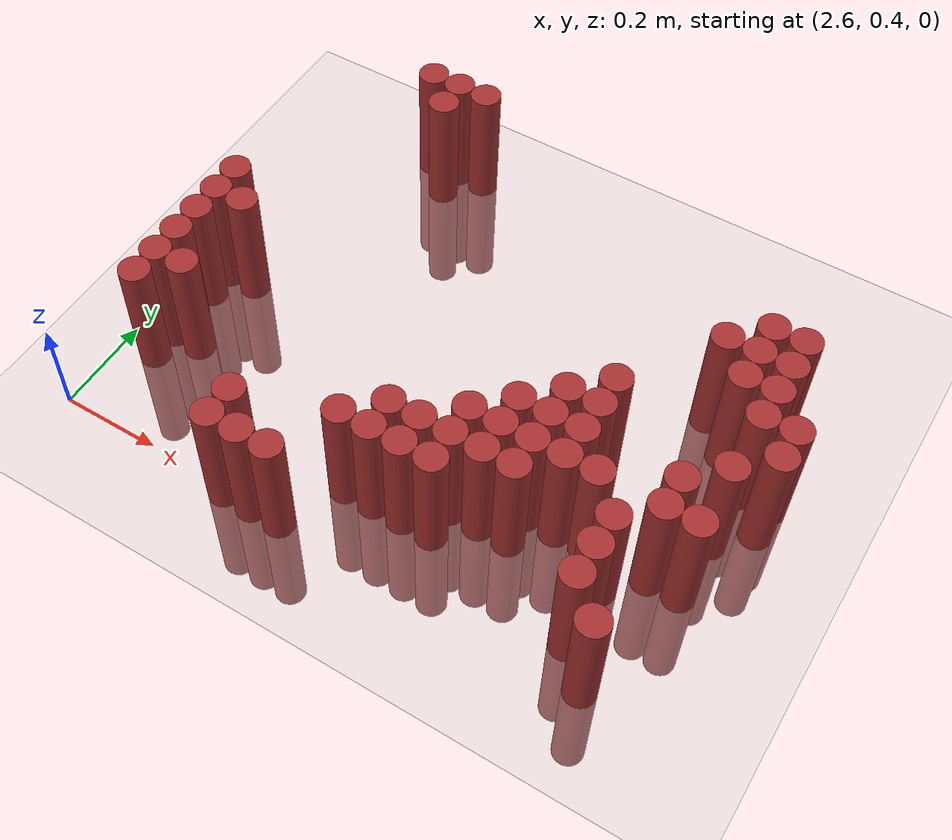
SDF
<sdf version="1.6">
 <world name="default">
  <model name="ground_plane">
   <static>1</static>
   <link name="link">
    <collision name="collision">
     <geometry><plane><normal>0 0 1</normal><size>100 100</size></plane></geometry>
     <surface><friction><ode><mu>100</mu><mu2>50</mu2></ode></friction></surface>
    </collision>
    <visual name="visual">
     <cast_shadows>0</cast_shadows>
     <geometry><plane><normal>0 0 1</normal><size>100 100</size></plane></geometry>
     <material>
      <script><uri>file://media/materials/scripts/gazebo.material</uri><name>Gazebo/Grey</name></script>
     </material>
    </visual>
   </link>
  </model>
  <model name="unit_cylinder_181">
   <static>1</static>
   <pose>2.850000 1.290000 0.000000 0.000000 0.000000 0.000000</pose>
   <link name="link">
    <inertial>
     <mass>1</mass>
     <inertia><ixx>0.145833</ixx><ixy>0</ixy><ixz>0</ixz><iyy>0.145833</iyy><iyz>0</iyz><izz>0.125</izz></inertia>
    </inertial>
    <collision name="collision">
     <geometry><cylinder><radius>0.030000</radius><length>0.5</length></cylinder></geometry>
    </collision>
    <visual name="visual">
     <geometry><cylinder><radius>0.030000</radius><length>0.5</length></cylinder></geometry>
     <material>
      <ambient>0.648000 0.192000 0.192000 1</ambient>
      <diffuse>0.648000 0.192000 0.192000 1</diffuse>
     </material>
     <material>
      <script><name>Gazebo/Grey</name><uri>file://media/materials/scripts/gazebo.material</uri></script>
     </material>
    </visual>
   </link>
  </model>
  <model name="unit_cylinder_182">
   <static>1</static>
   <pose>2.910000 1.290000 0.000000 0.000000 0.000000 0.000000</pose>
   <link name="link">
    <inertial>
     <mass>1</mass>
     <inertia><ixx>0.145833</ixx><ixy>0</ixy><ixz>0</ixz><iyy>0.145833</iyy><iyz>0</iyz><izz>0.125</izz></inertia>
    </inertial>
    <collision name="collision">
     <geometry><cylinder><radius>0.030000</radius><length>0.5</length></cylinder></geometry>
    </collision>
    <visual name="visual">
     <geometry><cylinder><radius>0.030000</radius><length>0.5</length></cylinder></geometry>
     <material>
      <ambient>0.648000 0.192000 0.192000 1</ambient>
      <diffuse>0.648000 0.192000 0.192000 1</diffuse>
     </material>
     <material>
      <script><name>Gazebo/Grey</name><uri>file://media/materials/scripts/gazebo.material</uri></script>
     </material>
    </visual>
   </link>
  </model>
  <model name="unit_cylinder_183">
   <static>1</static>
   <pose>2.970000 1.290000 0.000000 0.000000 0.000000 0.000000</pose>
   <link name="link">
    <inertial>
     <mass>1</mass>
     <inertia><ixx>0.145833</ixx><ixy>0</ixy><ixz>0</ixz><iyy>0.145833</iyy><iyz>0</iyz><izz>0.125</izz></inertia>
    </inertial>
    <collision name="collision">
     <geometry><cylinder><radius>0.030000</radius><length>0.5</length></cylinder></geometry>
    </collision>
    <visual name="visual">
     <geometry><cylinder><radius>0.030000</radius><length>0.5</length></cylinder></geometry>
     <material>
      <ambient>0.648000 0.192000 0.192000 1</ambient>
      <diffuse>0.648000 0.192000 0.192000 1</diffuse>
     </material>
     <material>
      <script><name>Gazebo/Grey</name><uri>file://media/materials/scripts/gazebo.material</uri></script>
     </material>
    </visual>
   </link>
  </model>
  <model name="unit_cylinder_184">
   <static>1</static>
   <pose>2.910000 1.230000 0.000000 0.000000 0.000000 0.000000</pose>
   <link name="link">
    <inertial>
     <mass>1</mass>
     <inertia><ixx>0.145833</ixx><ixy>0</ixy><ixz>0</ixz><iyy>0.145833</iyy><iyz>0</iyz><izz>0.125</izz></inertia>
    </inertial>
    <collision name="collision">
     <geometry><cylinder><radius>0.030000</radius><length>0.5</length></cylinder></geometry>
    </collision>
    <visual name="visual">
     <geometry><cylinder><radius>0.030000</radius><length>0.5</length></cylinder></geometry>
     <material>
      <ambient>0.648000 0.192000 0.192000 1</ambient>
      <diffuse>0.648000 0.192000 0.192000 1</diffuse>
     </material>
     <material>
      <script><name>Gazebo/Grey</name><uri>file://media/materials/scripts/gazebo.material</uri></script>
     </material>
    </visual>
   </link>
  </model>
  <model name="unit_cylinder_185">
   <static>1</static>
   <pose>3.690000 1.050000 0.000000 0.000000 0.000000 0.000000</pose>
   <link name="link">
    <inertial>
     <mass>1</mass>
     <inertia><ixx>0.145833</ixx><ixy>0</ixy><ixz>0</ixz><iyy>0.145833</iyy><iyz>0</iyz><izz>0.125</izz></inertia>
    </inertial>
    <collision name="collision">
     <geometry><cylinder><radius>0.030000</radius><length>0.5</length></cylinder></geometry>
    </collision>
    <visual name="visual">
     <geometry><cylinder><radius>0.030000</radius><length>0.5</length></cylinder></geometry>
     <material>
      <ambient>0.648000 0.192000 0.192000 1</ambient>
      <diffuse>0.648000 0.192000 0.192000 1</diffuse>
     </material>
     <material>
      <script><name>Gazebo/Grey</name><uri>file://media/materials/scripts/gazebo.material</uri></script>
     </material>
    </visual>
   </link>
  </model>
  <model name="unit_cylinder_186">
   <static>1</static>
   <pose>3.750000 1.050000 0.000000 0.000000 0.000000 0.000000</pose>
   <link name="link">
    <inertial>
     <mass>1</mass>
     <inertia><ixx>0.145833</ixx><ixy>0</ixy><ixz>0</ixz><iyy>0.145833</iyy><iyz>0</iyz><izz>0.125</izz></inertia>
    </inertial>
    <collision name="collision">
     <geometry><cylinder><radius>0.030000</radius><length>0.5</length></cylinder></geometry>
    </collision>
    <visual name="visual">
     <geometry><cylinder><radius>0.030000</radius><length>0.5</length></cylinder></geometry>
     <material>
      <ambient>0.648000 0.192000 0.192000 1</ambient>
      <diffuse>0.648000 0.192000 0.192000 1</diffuse>
     </material>
     <material>
      <script><name>Gazebo/Grey</name><uri>file://media/materials/scripts/gazebo.material</uri></script>
     </material>
    </visual>
   </link>
  </model>
  <model name="unit_cylinder_187">
   <static>1</static>
   <pose>3.630000 0.990000 0.000000 0.000000 0.000000 0.000000</pose>
   <link name="link">
    <inertial>
     <mass>1</mass>
     <inertia><ixx>0.145833</ixx><ixy>0</ixy><ixz>0</ixz><iyy>0.145833</iyy><iyz>0</iyz><izz>0.125</izz></inertia>
    </inertial>
    <collision name="collision">
     <geometry><cylinder><radius>0.030000</radius><length>0.5</length></cylinder></geometry>
    </collision>
    <visual name="visual">
     <geometry><cylinder><radius>0.030000</radius><length>0.5</length></cylinder></geometry>
     <material>
      <ambient>0.648000 0.192000 0.192000 1</ambient>
      <diffuse>0.648000 0.192000 0.192000 1</diffuse>
     </material>
     <material>
      <script><name>Gazebo/Grey</name><uri>file://media/materials/scripts/gazebo.material</uri></script>
     </material>
    </visual>
   </link>
  </model>
  <model name="unit_cylinder_188">
   <static>1</static>
   <pose>3.690000 0.990000 0.000000 0.000000 0.000000 0.000000</pose>
   <link name="link">
    <inertial>
     <mass>1</mass>
     <inertia><ixx>0.145833</ixx><ixy>0</ixy><ixz>0</ixz><iyy>0.145833</iyy><iyz>0</iyz><izz>0.125</izz></inertia>
    </inertial>
    <collision name="collision">
     <geometry><cylinder><radius>0.030000</radius><length>0.5</length></cylinder></geometry>
    </collision>
    <visual name="visual">
     <geometry><cylinder><radius>0.030000</radius><length>0.5</length></cylinder></geometry>
     <material>
      <ambient>0.648000 0.192000 0.192000 1</ambient>
      <diffuse>0.648000 0.192000 0.192000 1</diffuse>
     </material>
     <material>
      <script><name>Gazebo/Grey</name><uri>file://media/materials/scripts/gazebo.material</uri></script>
     </material>
    </visual>
   </link>
  </model>
  <model name="unit_cylinder_189">
   <static>1</static>
   <pose>3.750000 0.990000 0.000000 0.000000 0.000000 0.000000</pose>
   <link name="link">
    <inertial>
     <mass>1</mass>
     <inertia><ixx>0.145833</ixx><ixy>0</ixy><ixz>0</ixz><iyy>0.145833</iyy><iyz>0</iyz><izz>0.125</izz></inertia>
    </inertial>
    <collision name="collision">
     <geometry><cylinder><radius>0.030000</radius><length>0.5</length></cylinder></geometry>
    </collision>
    <visual name="visual">
     <geometry><cylinder><radius>0.030000</radius><length>0.5</length></cylinder></geometry>
     <material>
      <ambient>0.648000 0.192000 0.192000 1</ambient>
      <diffuse>0.648000 0.192000 0.192000 1</diffuse>
     </material>
     <material>
      <script><name>Gazebo/Grey</name><uri>file://media/materials/scripts/gazebo.material</uri></script>
     </material>
    </visual>
   </link>
  </model>
  <model name="unit_cylinder_190">
   <static>1</static>
   <pose>3.690000 0.930000 0.000000 0.000000 0.000000 0.000000</pose>
   <link name="link">
    <inertial>
     <mass>1</mass>
     <inertia><ixx>0.145833</ixx><ixy>0</ixy><ixz>0</ixz><iyy>0.145833</iyy><iyz>0</iyz><izz>0.125</izz></inertia>
    </inertial>
    <collision name="collision">
     <geometry><cylinder><radius>0.030000</radius><length>0.5</length></cylinder></geometry>
    </collision>
    <visual name="visual">
     <geometry><cylinder><radius>0.030000</radius><length>0.5</length></cylinder></geometry>
     <material>
      <ambient>0.648000 0.192000 0.192000 1</ambient>
      <diffuse>0.648000 0.192000 0.192000 1</diffuse>
     </material>
     <material>
      <script><name>Gazebo/Grey</name><uri>file://media/materials/scripts/gazebo.material</uri></script>
     </material>
    </visual>
   </link>
  </model>
  <model name="unit_cylinder_191">
   <static>1</static>
   <pose>3.750000 0.930000 0.000000 0.000000 0.000000 0.000000</pose>
   <link name="link">
    <inertial>
     <mass>1</mass>
     <inertia><ixx>0.145833</ixx><ixy>0</ixy><ixz>0</ixz><iyy>0.145833</iyy><iyz>0</iyz><izz>0.125</izz></inertia>
    </inertial>
    <collision name="collision">
     <geometry><cylinder><radius>0.030000</radius><length>0.5</length></cylinder></geometry>
    </collision>
    <visual name="visual">
     <geometry><cylinder><radius>0.030000</radius><length>0.5</length></cylinder></geometry>
     <material>
      <ambient>0.648000 0.192000 0.192000 1</ambient>
      <diffuse>0.648000 0.192000 0.192000 1</diffuse>
     </material>
     <material>
      <script><name>Gazebo/Grey</name><uri>file://media/materials/scripts/gazebo.material</uri></script>
     </material>
    </visual>
   </link>
  </model>
  <model name="unit_cylinder_195">
   <static>1</static>
   <pose>2.670000 0.870000 0.000000 0.000000 0.000000 0.000000</pose>
   <link name="link">
    <inertial>
     <mass>1</mass>
     <inertia><ixx>0.145833</ixx><ixy>0</ixy><ixz>0</ixz><iyy>0.145833</iyy><iyz>0</iyz><izz>0.125</izz></inertia>
    </inertial>
    <collision name="collision">
     <geometry><cylinder><radius>0.030000</radius><length>0.5</length></cylinder></geometry>
    </collision>
    <visual name="visual">
     <geometry><cylinder><radius>0.030000</radius><length>0.5</length></cylinder></geometry>
     <material>
      <ambient>0.648000 0.192000 0.192000 1</ambient>
      <diffuse>0.648000 0.192000 0.192000 1</diffuse>
     </material>
     <material>
      <script><name>Gazebo/Grey</name><uri>file://media/materials/scripts/gazebo.material</uri></script>
     </material>
    </visual>
   </link>
  </model>
  <model name="unit_cylinder_196">
   <static>1</static>
   <pose>3.750000 0.870000 0.000000 0.000000 0.000000 0.000000</pose>
   <link name="link">
    <inertial>
     <mass>1</mass>
     <inertia><ixx>0.145833</ixx><ixy>0</ixy><ixz>0</ixz><iyy>0.145833</iyy><iyz>0</iyz><izz>0.125</izz></inertia>
    </inertial>
    <collision name="collision">
     <geometry><cylinder><radius>0.030000</radius><length>0.5</length></cylinder></geometry>
    </collision>
    <visual name="visual">
     <geometry><cylinder><radius>0.030000</radius><length>0.5</length></cylinder></geometry>
     <material>
      <ambient>0.648000 0.192000 0.192000 1</ambient>
      <diffuse>0.648000 0.192000 0.192000 1</diffuse>
     </material>
     <material>
      <script><name>Gazebo/Grey</name><uri>file://media/materials/scripts/gazebo.material</uri></script>
     </material>
    </visual>
   </link>
  </model>
  <model name="unit_cylinder_197">
   <static>1</static>
   <pose>3.810000 0.870000 0.000000 0.000000 0.000000 0.000000</pose>
   <link name="link">
    <inertial>
     <mass>1</mass>
     <inertia><ixx>0.145833</ixx><ixy>0</ixy><ixz>0</ixz><iyy>0.145833</iyy><iyz>0</iyz><izz>0.125</izz></inertia>
    </inertial>
    <collision name="collision">
     <geometry><cylinder><radius>0.030000</radius><length>0.5</length></cylinder></geometry>
    </collision>
    <visual name="visual">
     <geometry><cylinder><radius>0.030000</radius><length>0.5</length></cylinder></geometry>
     <material>
      <ambient>0.648000 0.192000 0.192000 1</ambient>
      <diffuse>0.648000 0.192000 0.192000 1</diffuse>
     </material>
     <material>
      <script><name>Gazebo/Grey</name><uri>file://media/materials/scripts/gazebo.material</uri></script>
     </material>
    </visual>
   </link>
  </model>
  <model name="unit_cylinder_204">
   <static>1</static>
   <pose>2.670000 0.810000 0.000000 0.000000 0.000000 0.000000</pose>
   <link name="link">
    <inertial>
     <mass>1</mass>
     <inertia><ixx>0.145833</ixx><ixy>0</ixy><ixz>0</ixz><iyy>0.145833</iyy><iyz>0</iyz><izz>0.125</izz></inertia>
    </inertial>
    <collision name="collision">
     <geometry><cylinder><radius>0.030000</radius><length>0.5</length></cylinder></geometry>
    </collision>
    <visual name="visual">
     <geometry><cylinder><radius>0.030000</radius><length>0.5</length></cylinder></geometry>
     <material>
      <ambient>0.648000 0.192000 0.192000 1</ambient>
      <diffuse>0.648000 0.192000 0.192000 1</diffuse>
     </material>
     <material>
      <script><name>Gazebo/Grey</name><uri>file://media/materials/scripts/gazebo.material</uri></script>
     </material>
    </visual>
   </link>
  </model>
  <model name="unit_cylinder_205">
   <static>1</static>
   <pose>2.730000 0.810000 0.000000 0.000000 0.000000 0.000000</pose>
   <link name="link">
    <inertial>
     <mass>1</mass>
     <inertia><ixx>0.145833</ixx><ixy>0</ixy><ixz>0</ixz><iyy>0.145833</iyy><iyz>0</iyz><izz>0.125</izz></inertia>
    </inertial>
    <collision name="collision">
     <geometry><cylinder><radius>0.030000</radius><length>0.5</length></cylinder></geometry>
    </collision>
    <visual name="visual">
     <geometry><cylinder><radius>0.030000</radius><length>0.5</length></cylinder></geometry>
     <material>
      <ambient>0.648000 0.192000 0.192000 1</ambient>
      <diffuse>0.648000 0.192000 0.192000 1</diffuse>
     </material>
     <material>
      <script><name>Gazebo/Grey</name><uri>file://media/materials/scripts/gazebo.material</uri></script>
     </material>
    </visual>
   </link>
  </model>
  <model name="unit_cylinder_206">
   <static>1</static>
   <pose>3.510000 0.810000 0.000000 0.000000 0.000000 0.000000</pose>
   <link name="link">
    <inertial>
     <mass>1</mass>
     <inertia><ixx>0.145833</ixx><ixy>0</ixy><ixz>0</ixz><iyy>0.145833</iyy><iyz>0</iyz><izz>0.125</izz></inertia>
    </inertial>
    <collision name="collision">
     <geometry><cylinder><radius>0.030000</radius><length>0.5</length></cylinder></geometry>
    </collision>
    <visual name="visual">
     <geometry><cylinder><radius>0.030000</radius><length>0.5</length></cylinder></geometry>
     <material>
      <ambient>0.648000 0.192000 0.192000 1</ambient>
      <diffuse>0.648000 0.192000 0.192000 1</diffuse>
     </material>
     <material>
      <script><name>Gazebo/Grey</name><uri>file://media/materials/scripts/gazebo.material</uri></script>
     </material>
    </visual>
   </link>
  </model>
  <model name="unit_cylinder_207">
   <static>1</static>
   <pose>3.810000 0.810000 0.000000 0.000000 0.000000 0.000000</pose>
   <link name="link">
    <inertial>
     <mass>1</mass>
     <inertia><ixx>0.145833</ixx><ixy>0</ixy><ixz>0</ixz><iyy>0.145833</iyy><iyz>0</iyz><izz>0.125</izz></inertia>
    </inertial>
    <collision name="collision">
     <geometry><cylinder><radius>0.030000</radius><length>0.5</length></cylinder></geometry>
    </collision>
    <visual name="visual">
     <geometry><cylinder><radius>0.030000</radius><length>0.5</length></cylinder></geometry>
     <material>
      <ambient>0.648000 0.192000 0.192000 1</ambient>
      <diffuse>0.648000 0.192000 0.192000 1</diffuse>
     </material>
     <material>
      <script><name>Gazebo/Grey</name><uri>file://media/materials/scripts/gazebo.material</uri></script>
     </material>
    </visual>
   </link>
  </model>
  <model name="unit_cylinder_210">
   <static>1</static>
   <pose>2.670000 0.750000 0.000000 0.000000 0.000000 0.000000</pose>
   <link name="link">
    <inertial>
     <mass>1</mass>
     <inertia><ixx>0.145833</ixx><ixy>0</ixy><ixz>0</ixz><iyy>0.145833</iyy><iyz>0</iyz><izz>0.125</izz></inertia>
    </inertial>
    <collision name="collision">
     <geometry><cylinder><radius>0.030000</radius><length>0.5</length></cylinder></geometry>
    </collision>
    <visual name="visual">
     <geometry><cylinder><radius>0.030000</radius><length>0.5</length></cylinder></geometry>
     <material>
      <ambient>0.648000 0.192000 0.192000 1</ambient>
      <diffuse>0.648000 0.192000 0.192000 1</diffuse>
     </material>
     <material>
      <script><name>Gazebo/Grey</name><uri>file://media/materials/scripts/gazebo.material</uri></script>
     </material>
    </visual>
   </link>
  </model>
  <model name="unit_cylinder_211">
   <static>1</static>
   <pose>3.450000 0.750000 0.000000 0.000000 0.000000 0.000000</pose>
   <link name="link">
    <inertial>
     <mass>1</mass>
     <inertia><ixx>0.145833</ixx><ixy>0</ixy><ixz>0</ixz><iyy>0.145833</iyy><iyz>0</iyz><izz>0.125</izz></inertia>
    </inertial>
    <collision name="collision">
     <geometry><cylinder><radius>0.030000</radius><length>0.5</length></cylinder></geometry>
    </collision>
    <visual name="visual">
     <geometry><cylinder><radius>0.030000</radius><length>0.5</length></cylinder></geometry>
     <material>
      <ambient>0.648000 0.192000 0.192000 1</ambient>
      <diffuse>0.648000 0.192000 0.192000 1</diffuse>
     </material>
     <material>
      <script><name>Gazebo/Grey</name><uri>file://media/materials/scripts/gazebo.material</uri></script>
     </material>
    </visual>
   </link>
  </model>
  <model name="unit_cylinder_212">
   <static>1</static>
   <pose>3.510000 0.750000 0.000000 0.000000 0.000000 0.000000</pose>
   <link name="link">
    <inertial>
     <mass>1</mass>
     <inertia><ixx>0.145833</ixx><ixy>0</ixy><ixz>0</ixz><iyy>0.145833</iyy><iyz>0</iyz><izz>0.125</izz></inertia>
    </inertial>
    <collision name="collision">
     <geometry><cylinder><radius>0.030000</radius><length>0.5</length></cylinder></geometry>
    </collision>
    <visual name="visual">
     <geometry><cylinder><radius>0.030000</radius><length>0.5</length></cylinder></geometry>
     <material>
      <ambient>0.648000 0.192000 0.192000 1</ambient>
      <diffuse>0.648000 0.192000 0.192000 1</diffuse>
     </material>
     <material>
      <script><name>Gazebo/Grey</name><uri>file://media/materials/scripts/gazebo.material</uri></script>
     </material>
    </visual>
   </link>
  </model>
  <model name="unit_cylinder_213">
   <static>1</static>
   <pose>3.750000 0.750000 0.000000 0.000000 0.000000 0.000000</pose>
   <link name="link">
    <inertial>
     <mass>1</mass>
     <inertia><ixx>0.145833</ixx><ixy>0</ixy><ixz>0</ixz><iyy>0.145833</iyy><iyz>0</iyz><izz>0.125</izz></inertia>
    </inertial>
    <collision name="collision">
     <geometry><cylinder><radius>0.030000</radius><length>0.5</length></cylinder></geometry>
    </collision>
    <visual name="visual">
     <geometry><cylinder><radius>0.030000</radius><length>0.5</length></cylinder></geometry>
     <material>
      <ambient>0.648000 0.192000 0.192000 1</ambient>
      <diffuse>0.648000 0.192000 0.192000 1</diffuse>
     </material>
     <material>
      <script><name>Gazebo/Grey</name><uri>file://media/materials/scripts/gazebo.material</uri></script>
     </material>
    </visual>
   </link>
  </model>
  <model name="unit_cylinder_218">
   <static>1</static>
   <pose>2.670000 0.690000 0.000000 0.000000 0.000000 0.000000</pose>
   <link name="link">
    <inertial>
     <mass>1</mass>
     <inertia><ixx>0.145833</ixx><ixy>0</ixy><ixz>0</ixz><iyy>0.145833</iyy><iyz>0</iyz><izz>0.125</izz></inertia>
    </inertial>
    <collision name="collision">
     <geometry><cylinder><radius>0.030000</radius><length>0.5</length></cylinder></geometry>
    </collision>
    <visual name="visual">
     <geometry><cylinder><radius>0.030000</radius><length>0.5</length></cylinder></geometry>
     <material>
      <ambient>0.648000 0.192000 0.192000 1</ambient>
      <diffuse>0.648000 0.192000 0.192000 1</diffuse>
     </material>
     <material>
      <script><name>Gazebo/Grey</name><uri>file://media/materials/scripts/gazebo.material</uri></script>
     </material>
    </visual>
   </link>
  </model>
  <model name="unit_cylinder_219">
   <static>1</static>
   <pose>3.390000 0.690000 0.000000 0.000000 0.000000 0.000000</pose>
   <link name="link">
    <inertial>
     <mass>1</mass>
     <inertia><ixx>0.145833</ixx><ixy>0</ixy><ixz>0</ixz><iyy>0.145833</iyy><iyz>0</iyz><izz>0.125</izz></inertia>
    </inertial>
    <collision name="collision">
     <geometry><cylinder><radius>0.030000</radius><length>0.5</length></cylinder></geometry>
    </collision>
    <visual name="visual">
     <geometry><cylinder><radius>0.030000</radius><length>0.5</length></cylinder></geometry>
     <material>
      <ambient>0.648000 0.192000 0.192000 1</ambient>
      <diffuse>0.648000 0.192000 0.192000 1</diffuse>
     </material>
     <material>
      <script><name>Gazebo/Grey</name><uri>file://media/materials/scripts/gazebo.material</uri></script>
     </material>
    </visual>
   </link>
  </model>
  <model name="unit_cylinder_220">
   <static>1</static>
   <pose>3.450000 0.690000 0.000000 0.000000 0.000000 0.000000</pose>
   <link name="link">
    <inertial>
     <mass>1</mass>
     <inertia><ixx>0.145833</ixx><ixy>0</ixy><ixz>0</ixz><iyy>0.145833</iyy><iyz>0</iyz><izz>0.125</izz></inertia>
    </inertial>
    <collision name="collision">
     <geometry><cylinder><radius>0.030000</radius><length>0.5</length></cylinder></geometry>
    </collision>
    <visual name="visual">
     <geometry><cylinder><radius>0.030000</radius><length>0.5</length></cylinder></geometry>
     <material>
      <ambient>0.648000 0.192000 0.192000 1</ambient>
      <diffuse>0.648000 0.192000 0.192000 1</diffuse>
     </material>
     <material>
      <script><name>Gazebo/Grey</name><uri>file://media/materials/scripts/gazebo.material</uri></script>
     </material>
    </visual>
   </link>
  </model>
  <model name="unit_cylinder_221">
   <static>1</static>
   <pose>3.510000 0.690000 0.000000 0.000000 0.000000 0.000000</pose>
   <link name="link">
    <inertial>
     <mass>1</mass>
     <inertia><ixx>0.145833</ixx><ixy>0</ixy><ixz>0</ixz><iyy>0.145833</iyy><iyz>0</iyz><izz>0.125</izz></inertia>
    </inertial>
    <collision name="collision">
     <geometry><cylinder><radius>0.030000</radius><length>0.5</length></cylinder></geometry>
    </collision>
    <visual name="visual">
     <geometry><cylinder><radius>0.030000</radius><length>0.5</length></cylinder></geometry>
     <material>
      <ambient>0.648000 0.192000 0.192000 1</ambient>
      <diffuse>0.648000 0.192000 0.192000 1</diffuse>
     </material>
     <material>
      <script><name>Gazebo/Grey</name><uri>file://media/materials/scripts/gazebo.material</uri></script>
     </material>
    </visual>
   </link>
  </model>
  <model name="unit_cylinder_222">
   <static>1</static>
   <pose>3.690000 0.690000 0.000000 0.000000 0.000000 0.000000</pose>
   <link name="link">
    <inertial>
     <mass>1</mass>
     <inertia><ixx>0.145833</ixx><ixy>0</ixy><ixz>0</ixz><iyy>0.145833</iyy><iyz>0</iyz><izz>0.125</izz></inertia>
    </inertial>
    <collision name="collision">
     <geometry><cylinder><radius>0.030000</radius><length>0.5</length></cylinder></geometry>
    </collision>
    <visual name="visual">
     <geometry><cylinder><radius>0.030000</radius><length>0.5</length></cylinder></geometry>
     <material>
      <ambient>0.648000 0.192000 0.192000 1</ambient>
      <diffuse>0.648000 0.192000 0.192000 1</diffuse>
     </material>
     <material>
      <script><name>Gazebo/Grey</name><uri>file://media/materials/scripts/gazebo.material</uri></script>
     </material>
    </visual>
   </link>
  </model>
  <model name="unit_cylinder_225">
   <static>1</static>
   <pose>2.670000 0.630000 0.000000 0.000000 0.000000 0.000000</pose>
   <link name="link">
    <inertial>
     <mass>1</mass>
     <inertia><ixx>0.145833</ixx><ixy>0</ixy><ixz>0</ixz><iyy>0.145833</iyy><iyz>0</iyz><izz>0.125</izz></inertia>
    </inertial>
    <collision name="collision">
     <geometry><cylinder><radius>0.030000</radius><length>0.5</length></cylinder></geometry>
    </collision>
    <visual name="visual">
     <geometry><cylinder><radius>0.030000</radius><length>0.5</length></cylinder></geometry>
     <material>
      <ambient>0.648000 0.192000 0.192000 1</ambient>
      <diffuse>0.648000 0.192000 0.192000 1</diffuse>
     </material>
     <material>
      <script><name>Gazebo/Grey</name><uri>file://media/materials/scripts/gazebo.material</uri></script>
     </material>
    </visual>
   </link>
  </model>
  <model name="unit_cylinder_226">
   <static>1</static>
   <pose>2.730000 0.630000 0.000000 0.000000 0.000000 0.000000</pose>
   <link name="link">
    <inertial>
     <mass>1</mass>
     <inertia><ixx>0.145833</ixx><ixy>0</ixy><ixz>0</ixz><iyy>0.145833</iyy><iyz>0</iyz><izz>0.125</izz></inertia>
    </inertial>
    <collision name="collision">
     <geometry><cylinder><radius>0.030000</radius><length>0.5</length></cylinder></geometry>
    </collision>
    <visual name="visual">
     <geometry><cylinder><radius>0.030000</radius><length>0.5</length></cylinder></geometry>
     <material>
      <ambient>0.648000 0.192000 0.192000 1</ambient>
      <diffuse>0.648000 0.192000 0.192000 1</diffuse>
     </material>
     <material>
      <script><name>Gazebo/Grey</name><uri>file://media/materials/scripts/gazebo.material</uri></script>
     </material>
    </visual>
   </link>
  </model>
  <model name="unit_cylinder_227">
   <static>1</static>
   <pose>3.330000 0.630000 0.000000 0.000000 0.000000 0.000000</pose>
   <link name="link">
    <inertial>
     <mass>1</mass>
     <inertia><ixx>0.145833</ixx><ixy>0</ixy><ixz>0</ixz><iyy>0.145833</iyy><iyz>0</iyz><izz>0.125</izz></inertia>
    </inertial>
    <collision name="collision">
     <geometry><cylinder><radius>0.030000</radius><length>0.5</length></cylinder></geometry>
    </collision>
    <visual name="visual">
     <geometry><cylinder><radius>0.030000</radius><length>0.5</length></cylinder></geometry>
     <material>
      <ambient>0.648000 0.192000 0.192000 1</ambient>
      <diffuse>0.648000 0.192000 0.192000 1</diffuse>
     </material>
     <material>
      <script><name>Gazebo/Grey</name><uri>file://media/materials/scripts/gazebo.material</uri></script>
     </material>
    </visual>
   </link>
  </model>
  <model name="unit_cylinder_228">
   <static>1</static>
   <pose>3.390000 0.630000 0.000000 0.000000 0.000000 0.000000</pose>
   <link name="link">
    <inertial>
     <mass>1</mass>
     <inertia><ixx>0.145833</ixx><ixy>0</ixy><ixz>0</ixz><iyy>0.145833</iyy><iyz>0</iyz><izz>0.125</izz></inertia>
    </inertial>
    <collision name="collision">
     <geometry><cylinder><radius>0.030000</radius><length>0.5</length></cylinder></geometry>
    </collision>
    <visual name="visual">
     <geometry><cylinder><radius>0.030000</radius><length>0.5</length></cylinder></geometry>
     <material>
      <ambient>0.648000 0.192000 0.192000 1</ambient>
      <diffuse>0.648000 0.192000 0.192000 1</diffuse>
     </material>
     <material>
      <script><name>Gazebo/Grey</name><uri>file://media/materials/scripts/gazebo.material</uri></script>
     </material>
    </visual>
   </link>
  </model>
  <model name="unit_cylinder_229">
   <static>1</static>
   <pose>3.450000 0.630000 0.000000 0.000000 0.000000 0.000000</pose>
   <link name="link">
    <inertial>
     <mass>1</mass>
     <inertia><ixx>0.145833</ixx><ixy>0</ixy><ixz>0</ixz><iyy>0.145833</iyy><iyz>0</iyz><izz>0.125</izz></inertia>
    </inertial>
    <collision name="collision">
     <geometry><cylinder><radius>0.030000</radius><length>0.5</length></cylinder></geometry>
    </collision>
    <visual name="visual">
     <geometry><cylinder><radius>0.030000</radius><length>0.5</length></cylinder></geometry>
     <material>
      <ambient>0.648000 0.192000 0.192000 1</ambient>
      <diffuse>0.648000 0.192000 0.192000 1</diffuse>
     </material>
     <material>
      <script><name>Gazebo/Grey</name><uri>file://media/materials/scripts/gazebo.material</uri></script>
     </material>
    </visual>
   </link>
  </model>
  <model name="unit_cylinder_230">
   <static>1</static>
   <pose>3.510000 0.630000 0.000000 0.000000 0.000000 0.000000</pose>
   <link name="link">
    <inertial>
     <mass>1</mass>
     <inertia><ixx>0.145833</ixx><ixy>0</ixy><ixz>0</ixz><iyy>0.145833</iyy><iyz>0</iyz><izz>0.125</izz></inertia>
    </inertial>
    <collision name="collision">
     <geometry><cylinder><radius>0.030000</radius><length>0.5</length></cylinder></geometry>
    </collision>
    <visual name="visual">
     <geometry><cylinder><radius>0.030000</radius><length>0.5</length></cylinder></geometry>
     <material>
      <ambient>0.648000 0.192000 0.192000 1</ambient>
      <diffuse>0.648000 0.192000 0.192000 1</diffuse>
     </material>
     <material>
      <script><name>Gazebo/Grey</name><uri>file://media/materials/scripts/gazebo.material</uri></script>
     </material>
    </visual>
   </link>
  </model>
  <model name="unit_cylinder_231">
   <static>1</static>
   <pose>3.570000 0.630000 0.000000 0.000000 0.000000 0.000000</pose>
   <link name="link">
    <inertial>
     <mass>1</mass>
     <inertia><ixx>0.145833</ixx><ixy>0</ixy><ixz>0</ixz><iyy>0.145833</iyy><iyz>0</iyz><izz>0.125</izz></inertia>
    </inertial>
    <collision name="collision">
     <geometry><cylinder><radius>0.030000</radius><length>0.5</length></cylinder></geometry>
    </collision>
    <visual name="visual">
     <geometry><cylinder><radius>0.030000</radius><length>0.5</length></cylinder></geometry>
     <material>
      <ambient>0.648000 0.192000 0.192000 1</ambient>
      <diffuse>0.648000 0.192000 0.192000 1</diffuse>
     </material>
     <material>
      <script><name>Gazebo/Grey</name><uri>file://media/materials/scripts/gazebo.material</uri></script>
     </material>
    </visual>
   </link>
  </model>
  <model name="unit_cylinder_232">
   <static>1</static>
   <pose>3.690000 0.630000 0.000000 0.000000 0.000000 0.000000</pose>
   <link name="link">
    <inertial>
     <mass>1</mass>
     <inertia><ixx>0.145833</ixx><ixy>0</ixy><ixz>0</ixz><iyy>0.145833</iyy><iyz>0</iyz><izz>0.125</izz></inertia>
    </inertial>
    <collision name="collision">
     <geometry><cylinder><radius>0.030000</radius><length>0.5</length></cylinder></geometry>
    </collision>
    <visual name="visual">
     <geometry><cylinder><radius>0.030000</radius><length>0.5</length></cylinder></geometry>
     <material>
      <ambient>0.648000 0.192000 0.192000 1</ambient>
      <diffuse>0.648000 0.192000 0.192000 1</diffuse>
     </material>
     <material>
      <script><name>Gazebo/Grey</name><uri>file://media/materials/scripts/gazebo.material</uri></script>
     </material>
    </visual>
   </link>
  </model>
  <model name="unit_cylinder_233">
   <static>1</static>
   <pose>3.750000 0.630000 0.000000 0.000000 0.000000 0.000000</pose>
   <link name="link">
    <inertial>
     <mass>1</mass>
     <inertia><ixx>0.145833</ixx><ixy>0</ixy><ixz>0</ixz><iyy>0.145833</iyy><iyz>0</iyz><izz>0.125</izz></inertia>
    </inertial>
    <collision name="collision">
     <geometry><cylinder><radius>0.030000</radius><length>0.5</length></cylinder></geometry>
    </collision>
    <visual name="visual">
     <geometry><cylinder><radius>0.030000</radius><length>0.5</length></cylinder></geometry>
     <material>
      <ambient>0.648000 0.192000 0.192000 1</ambient>
      <diffuse>0.648000 0.192000 0.192000 1</diffuse>
     </material>
     <material>
      <script><name>Gazebo/Grey</name><uri>file://media/materials/scripts/gazebo.material</uri></script>
     </material>
    </visual>
   </link>
  </model>
  <model name="unit_cylinder_234">
   <static>1</static>
   <pose>2.670000 0.570000 0.000000 0.000000 0.000000 0.000000</pose>
   <link name="link">
    <inertial>
     <mass>1</mass>
     <inertia><ixx>0.145833</ixx><ixy>0</ixy><ixz>0</ixz><iyy>0.145833</iyy><iyz>0</iyz><izz>0.125</izz></inertia>
    </inertial>
    <collision name="collision">
     <geometry><cylinder><radius>0.030000</radius><length>0.5</length></cylinder></geometry>
    </collision>
    <visual name="visual">
     <geometry><cylinder><radius>0.030000</radius><length>0.5</length></cylinder></geometry>
     <material>
      <ambient>0.648000 0.192000 0.192000 1</ambient>
      <diffuse>0.648000 0.192000 0.192000 1</diffuse>
     </material>
     <material>
      <script><name>Gazebo/Grey</name><uri>file://media/materials/scripts/gazebo.material</uri></script>
     </material>
    </visual>
   </link>
  </model>
  <model name="unit_cylinder_235">
   <static>1</static>
   <pose>3.210000 0.570000 0.000000 0.000000 0.000000 0.000000</pose>
   <link name="link">
    <inertial>
     <mass>1</mass>
     <inertia><ixx>0.145833</ixx><ixy>0</ixy><ixz>0</ixz><iyy>0.145833</iyy><iyz>0</iyz><izz>0.125</izz></inertia>
    </inertial>
    <collision name="collision">
     <geometry><cylinder><radius>0.030000</radius><length>0.5</length></cylinder></geometry>
    </collision>
    <visual name="visual">
     <geometry><cylinder><radius>0.030000</radius><length>0.5</length></cylinder></geometry>
     <material>
      <ambient>0.648000 0.192000 0.192000 1</ambient>
      <diffuse>0.648000 0.192000 0.192000 1</diffuse>
     </material>
     <material>
      <script><name>Gazebo/Grey</name><uri>file://media/materials/scripts/gazebo.material</uri></script>
     </material>
    </visual>
   </link>
  </model>
  <model name="unit_cylinder_236">
   <static>1</static>
   <pose>3.270000 0.570000 0.000000 0.000000 0.000000 0.000000</pose>
   <link name="link">
    <inertial>
     <mass>1</mass>
     <inertia><ixx>0.145833</ixx><ixy>0</ixy><ixz>0</ixz><iyy>0.145833</iyy><iyz>0</iyz><izz>0.125</izz></inertia>
    </inertial>
    <collision name="collision">
     <geometry><cylinder><radius>0.030000</radius><length>0.5</length></cylinder></geometry>
    </collision>
    <visual name="visual">
     <geometry><cylinder><radius>0.030000</radius><length>0.5</length></cylinder></geometry>
     <material>
      <ambient>0.648000 0.192000 0.192000 1</ambient>
      <diffuse>0.648000 0.192000 0.192000 1</diffuse>
     </material>
     <material>
      <script><name>Gazebo/Grey</name><uri>file://media/materials/scripts/gazebo.material</uri></script>
     </material>
    </visual>
   </link>
  </model>
  <model name="unit_cylinder_237">
   <static>1</static>
   <pose>3.330000 0.570000 0.000000 0.000000 0.000000 0.000000</pose>
   <link name="link">
    <inertial>
     <mass>1</mass>
     <inertia><ixx>0.145833</ixx><ixy>0</ixy><ixz>0</ixz><iyy>0.145833</iyy><iyz>0</iyz><izz>0.125</izz></inertia>
    </inertial>
    <collision name="collision">
     <geometry><cylinder><radius>0.030000</radius><length>0.5</length></cylinder></geometry>
    </collision>
    <visual name="visual">
     <geometry><cylinder><radius>0.030000</radius><length>0.5</length></cylinder></geometry>
     <material>
      <ambient>0.648000 0.192000 0.192000 1</ambient>
      <diffuse>0.648000 0.192000 0.192000 1</diffuse>
     </material>
     <material>
      <script><name>Gazebo/Grey</name><uri>file://media/materials/scripts/gazebo.material</uri></script>
     </material>
    </visual>
   </link>
  </model>
  <model name="unit_cylinder_238">
   <static>1</static>
   <pose>3.390000 0.570000 0.000000 0.000000 0.000000 0.000000</pose>
   <link name="link">
    <inertial>
     <mass>1</mass>
     <inertia><ixx>0.145833</ixx><ixy>0</ixy><ixz>0</ixz><iyy>0.145833</iyy><iyz>0</iyz><izz>0.125</izz></inertia>
    </inertial>
    <collision name="collision">
     <geometry><cylinder><radius>0.030000</radius><length>0.5</length></cylinder></geometry>
    </collision>
    <visual name="visual">
     <geometry><cylinder><radius>0.030000</radius><length>0.5</length></cylinder></geometry>
     <material>
      <ambient>0.648000 0.192000 0.192000 1</ambient>
      <diffuse>0.648000 0.192000 0.192000 1</diffuse>
     </material>
     <material>
      <script><name>Gazebo/Grey</name><uri>file://media/materials/scripts/gazebo.material</uri></script>
     </material>
    </visual>
   </link>
  </model>
  <model name="unit_cylinder_239">
   <static>1</static>
   <pose>3.450000 0.570000 0.000000 0.000000 0.000000 0.000000</pose>
   <link name="link">
    <inertial>
     <mass>1</mass>
     <inertia><ixx>0.145833</ixx><ixy>0</ixy><ixz>0</ixz><iyy>0.145833</iyy><iyz>0</iyz><izz>0.125</izz></inertia>
    </inertial>
    <collision name="collision">
     <geometry><cylinder><radius>0.030000</radius><length>0.5</length></cylinder></geometry>
    </collision>
    <visual name="visual">
     <geometry><cylinder><radius>0.030000</radius><length>0.5</length></cylinder></geometry>
     <material>
      <ambient>0.648000 0.192000 0.192000 1</ambient>
      <diffuse>0.648000 0.192000 0.192000 1</diffuse>
     </material>
     <material>
      <script><name>Gazebo/Grey</name><uri>file://media/materials/scripts/gazebo.material</uri></script>
     </material>
    </visual>
   </link>
  </model>
  <model name="unit_cylinder_240">
   <static>1</static>
   <pose>3.630000 0.570000 0.000000 0.000000 0.000000 0.000000</pose>
   <link name="link">
    <inertial>
     <mass>1</mass>
     <inertia><ixx>0.145833</ixx><ixy>0</ixy><ixz>0</ixz><iyy>0.145833</iyy><iyz>0</iyz><izz>0.125</izz></inertia>
    </inertial>
    <collision name="collision">
     <geometry><cylinder><radius>0.030000</radius><length>0.5</length></cylinder></geometry>
    </collision>
    <visual name="visual">
     <geometry><cylinder><radius>0.030000</radius><length>0.5</length></cylinder></geometry>
     <material>
      <ambient>0.648000 0.192000 0.192000 1</ambient>
      <diffuse>0.648000 0.192000 0.192000 1</diffuse>
     </material>
     <material>
      <script><name>Gazebo/Grey</name><uri>file://media/materials/scripts/gazebo.material</uri></script>
     </material>
    </visual>
   </link>
  </model>
  <model name="unit_cylinder_241">
   <static>1</static>
   <pose>3.150000 0.510000 0.000000 0.000000 0.000000 0.000000</pose>
   <link name="link">
    <inertial>
     <mass>1</mass>
     <inertia><ixx>0.145833</ixx><ixy>0</ixy><ixz>0</ixz><iyy>0.145833</iyy><iyz>0</iyz><izz>0.125</izz></inertia>
    </inertial>
    <collision name="collision">
     <geometry><cylinder><radius>0.030000</radius><length>0.5</length></cylinder></geometry>
    </collision>
    <visual name="visual">
     <geometry><cylinder><radius>0.030000</radius><length>0.5</length></cylinder></geometry>
     <material>
      <ambient>0.648000 0.192000 0.192000 1</ambient>
      <diffuse>0.648000 0.192000 0.192000 1</diffuse>
     </material>
     <material>
      <script><name>Gazebo/Grey</name><uri>file://media/materials/scripts/gazebo.material</uri></script>
     </material>
    </visual>
   </link>
  </model>
  <model name="unit_cylinder_242">
   <static>1</static>
   <pose>3.210000 0.510000 0.000000 0.000000 0.000000 0.000000</pose>
   <link name="link">
    <inertial>
     <mass>1</mass>
     <inertia><ixx>0.145833</ixx><ixy>0</ixy><ixz>0</ixz><iyy>0.145833</iyy><iyz>0</iyz><izz>0.125</izz></inertia>
    </inertial>
    <collision name="collision">
     <geometry><cylinder><radius>0.030000</radius><length>0.5</length></cylinder></geometry>
    </collision>
    <visual name="visual">
     <geometry><cylinder><radius>0.030000</radius><length>0.5</length></cylinder></geometry>
     <material>
      <ambient>0.648000 0.192000 0.192000 1</ambient>
      <diffuse>0.648000 0.192000 0.192000 1</diffuse>
     </material>
     <material>
      <script><name>Gazebo/Grey</name><uri>file://media/materials/scripts/gazebo.material</uri></script>
     </material>
    </visual>
   </link>
  </model>
  <model name="unit_cylinder_243">
   <static>1</static>
   <pose>3.270000 0.510000 0.000000 0.000000 0.000000 0.000000</pose>
   <link name="link">
    <inertial>
     <mass>1</mass>
     <inertia><ixx>0.145833</ixx><ixy>0</ixy><ixz>0</ixz><iyy>0.145833</iyy><iyz>0</iyz><izz>0.125</izz></inertia>
    </inertial>
    <collision name="collision">
     <geometry><cylinder><radius>0.030000</radius><length>0.5</length></cylinder></geometry>
    </collision>
    <visual name="visual">
     <geometry><cylinder><radius>0.030000</radius><length>0.5</length></cylinder></geometry>
     <material>
      <ambient>0.648000 0.192000 0.192000 1</ambient>
      <diffuse>0.648000 0.192000 0.192000 1</diffuse>
     </material>
     <material>
      <script><name>Gazebo/Grey</name><uri>file://media/materials/scripts/gazebo.material</uri></script>
     </material>
    </visual>
   </link>
  </model>
  <model name="unit_cylinder_244">
   <static>1</static>
   <pose>3.330000 0.510000 0.000000 0.000000 0.000000 0.000000</pose>
   <link name="link">
    <inertial>
     <mass>1</mass>
     <inertia><ixx>0.145833</ixx><ixy>0</ixy><ixz>0</ixz><iyy>0.145833</iyy><iyz>0</iyz><izz>0.125</izz></inertia>
    </inertial>
    <collision name="collision">
     <geometry><cylinder><radius>0.030000</radius><length>0.5</length></cylinder></geometry>
    </collision>
    <visual name="visual">
     <geometry><cylinder><radius>0.030000</radius><length>0.5</length></cylinder></geometry>
     <material>
      <ambient>0.648000 0.192000 0.192000 1</ambient>
      <diffuse>0.648000 0.192000 0.192000 1</diffuse>
     </material>
     <material>
      <script><name>Gazebo/Grey</name><uri>file://media/materials/scripts/gazebo.material</uri></script>
     </material>
    </visual>
   </link>
  </model>
  <model name="unit_cylinder_245">
   <static>1</static>
   <pose>3.630000 0.510000 0.000000 0.000000 0.000000 0.000000</pose>
   <link name="link">
    <inertial>
     <mass>1</mass>
     <inertia><ixx>0.145833</ixx><ixy>0</ixy><ixz>0</ixz><iyy>0.145833</iyy><iyz>0</iyz><izz>0.125</izz></inertia>
    </inertial>
    <collision name="collision">
     <geometry><cylinder><radius>0.030000</radius><length>0.5</length></cylinder></geometry>
    </collision>
    <visual name="visual">
     <geometry><cylinder><radius>0.030000</radius><length>0.5</length></cylinder></geometry>
     <material>
      <ambient>0.648000 0.192000 0.192000 1</ambient>
      <diffuse>0.648000 0.192000 0.192000 1</diffuse>
     </material>
     <material>
      <script><name>Gazebo/Grey</name><uri>file://media/materials/scripts/gazebo.material</uri></script>
     </material>
    </visual>
   </link>
  </model>
  <model name="unit_cylinder_246">
   <static>1</static>
   <pose>2.970000 0.450000 0.000000 0.000000 0.000000 0.000000</pose>
   <link name="link">
    <inertial>
     <mass>1</mass>
     <inertia><ixx>0.145833</ixx><ixy>0</ixy><ixz>0</ixz><iyy>0.145833</iyy><iyz>0</iyz><izz>0.125</izz></inertia>
    </inertial>
    <collision name="collision">
     <geometry><cylinder><radius>0.030000</radius><length>0.5</length></cylinder></geometry>
    </collision>
    <visual name="visual">
     <geometry><cylinder><radius>0.030000</radius><length>0.5</length></cylinder></geometry>
     <material>
      <ambient>0.648000 0.192000 0.192000 1</ambient>
      <diffuse>0.648000 0.192000 0.192000 1</diffuse>
     </material>
     <material>
      <script><name>Gazebo/Grey</name><uri>file://media/materials/scripts/gazebo.material</uri></script>
     </material>
    </visual>
   </link>
  </model>
  <model name="unit_cylinder_247">
   <static>1</static>
   <pose>3.630000 0.450000 0.000000 0.000000 0.000000 0.000000</pose>
   <link name="link">
    <inertial>
     <mass>1</mass>
     <inertia><ixx>0.145833</ixx><ixy>0</ixy><ixz>0</ixz><iyy>0.145833</iyy><iyz>0</iyz><izz>0.125</izz></inertia>
    </inertial>
    <collision name="collision">
     <geometry><cylinder><radius>0.030000</radius><length>0.5</length></cylinder></geometry>
    </collision>
    <visual name="visual">
     <geometry><cylinder><radius>0.030000</radius><length>0.5</length></cylinder></geometry>
     <material>
      <ambient>0.648000 0.192000 0.192000 1</ambient>
      <diffuse>0.648000 0.192000 0.192000 1</diffuse>
     </material>
     <material>
      <script><name>Gazebo/Grey</name><uri>file://media/materials/scripts/gazebo.material</uri></script>
     </material>
    </visual>
   </link>
  </model>
  <model name="unit_cylinder_249">
   <static>1</static>
   <pose>2.970000 0.390000 0.000000 0.000000 0.000000 0.000000</pose>
   <link name="link">
    <inertial>
     <mass>1</mass>
     <inertia><ixx>0.145833</ixx><ixy>0</ixy><ixz>0</ixz><iyy>0.145833</iyy><iyz>0</iyz><izz>0.125</izz></inertia>
    </inertial>
    <collision name="collision">
     <geometry><cylinder><radius>0.030000</radius><length>0.5</length></cylinder></geometry>
    </collision>
    <visual name="visual">
     <geometry><cylinder><radius>0.030000</radius><length>0.5</length></cylinder></geometry>
     <material>
      <ambient>0.648000 0.192000 0.192000 1</ambient>
      <diffuse>0.648000 0.192000 0.192000 1</diffuse>
     </material>
     <material>
      <script><name>Gazebo/Grey</name><uri>file://media/materials/scripts/gazebo.material</uri></script>
     </material>
    </visual>
   </link>
  </model>
  <model name="unit_cylinder_250">
   <static>1</static>
   <pose>3.030000 0.390000 0.000000 0.000000 0.000000 0.000000</pose>
   <link name="link">
    <inertial>
     <mass>1</mass>
     <inertia><ixx>0.145833</ixx><ixy>0</ixy><ixz>0</ixz><iyy>0.145833</iyy><iyz>0</iyz><izz>0.125</izz></inertia>
    </inertial>
    <collision name="collision">
     <geometry><cylinder><radius>0.030000</radius><length>0.5</length></cylinder></geometry>
    </collision>
    <visual name="visual">
     <geometry><cylinder><radius>0.030000</radius><length>0.5</length></cylinder></geometry>
     <material>
      <ambient>0.648000 0.192000 0.192000 1</ambient>
      <diffuse>0.648000 0.192000 0.192000 1</diffuse>
     </material>
     <material>
      <script><name>Gazebo/Grey</name><uri>file://media/materials/scripts/gazebo.material</uri></script>
     </material>
    </visual>
   </link>
  </model>
  <model name="unit_cylinder_251">
   <static>1</static>
   <pose>3.090000 0.390000 0.000000 0.000000 0.000000 0.000000</pose>
   <link name="link">
    <inertial>
     <mass>1</mass>
     <inertia><ixx>0.145833</ixx><ixy>0</ixy><ixz>0</ixz><iyy>0.145833</iyy><iyz>0</iyz><izz>0.125</izz></inertia>
    </inertial>
    <collision name="collision">
     <geometry><cylinder><radius>0.030000</radius><length>0.5</length></cylinder></geometry>
    </collision>
    <visual name="visual">
     <geometry><cylinder><radius>0.030000</radius><length>0.5</length></cylinder></geometry>
     <material>
      <ambient>0.648000 0.192000 0.192000 1</ambient>
      <diffuse>0.648000 0.192000 0.192000 1</diffuse>
     </material>
     <material>
      <script><name>Gazebo/Grey</name><uri>file://media/materials/scripts/gazebo.material</uri></script>
     </material>
    </visual>
   </link>
  </model>
  <model name="unit_cylinder_252">
   <static>1</static>
   <pose>3.690000 0.390000 0.000000 0.000000 0.000000 0.000000</pose>
   <link name="link">
    <inertial>
     <mass>1</mass>
     <inertia><ixx>0.145833</ixx><ixy>0</ixy><ixz>0</ixz><iyy>0.145833</iyy><iyz>0</iyz><izz>0.125</izz></inertia>
    </inertial>
    <collision name="collision">
     <geometry><cylinder><radius>0.030000</radius><length>0.5</length></cylinder></geometry>
    </collision>
    <visual name="visual">
     <geometry><cylinder><radius>0.030000</radius><length>0.5</length></cylinder></geometry>
     <material>
      <ambient>0.648000 0.192000 0.192000 1</ambient>
      <diffuse>0.648000 0.192000 0.192000 1</diffuse>
     </material>
     <material>
      <script><name>Gazebo/Grey</name><uri>file://media/materials/scripts/gazebo.material</uri></script>
     </material>
    </visual>
   </link>
  </model>
 </world>
</sdf>
